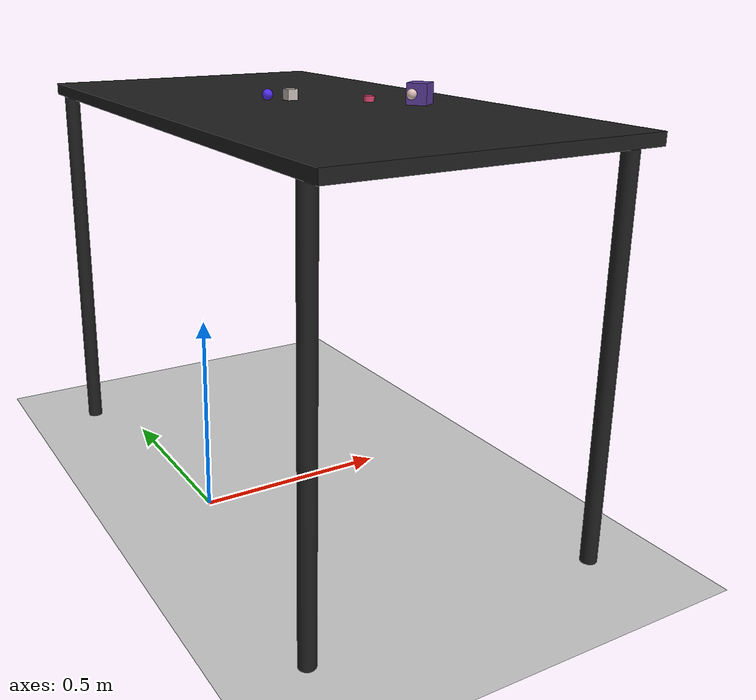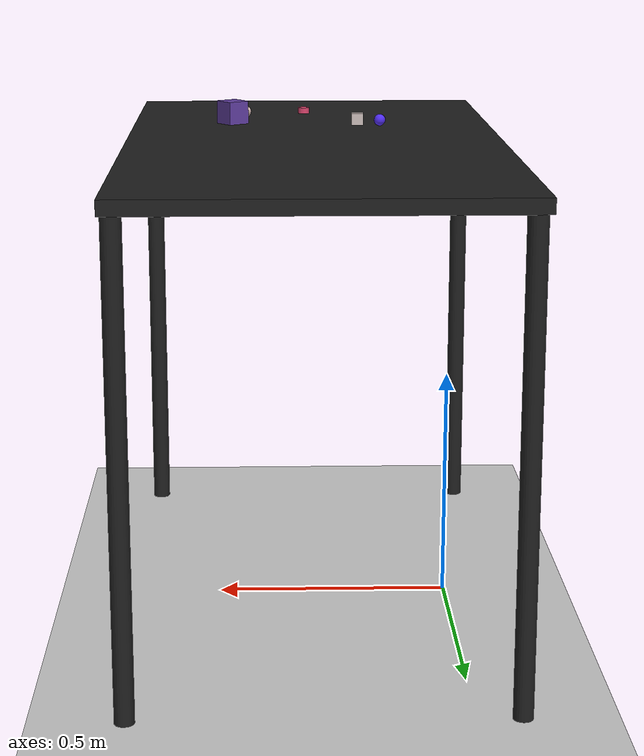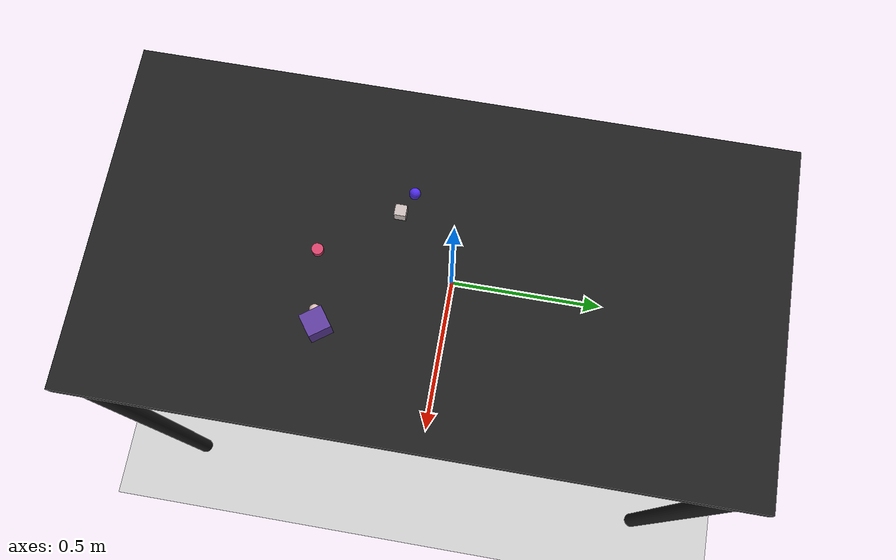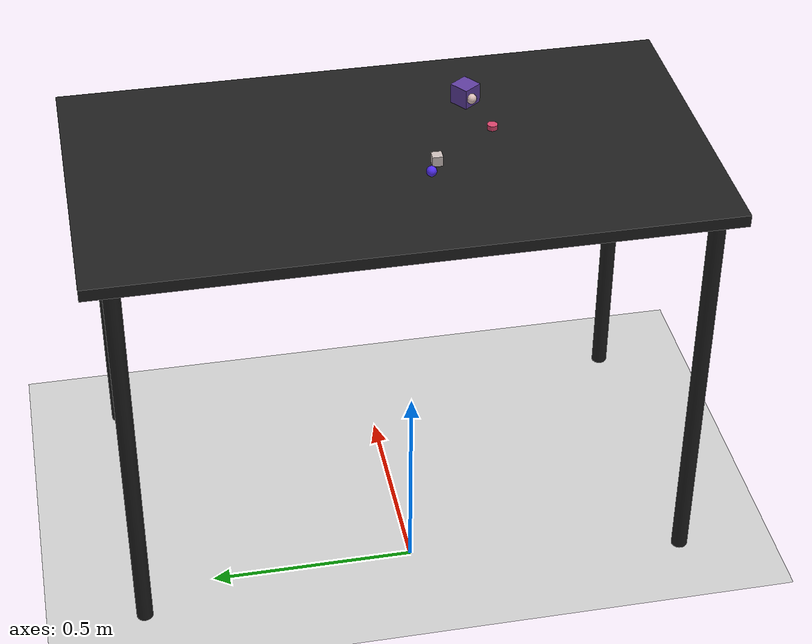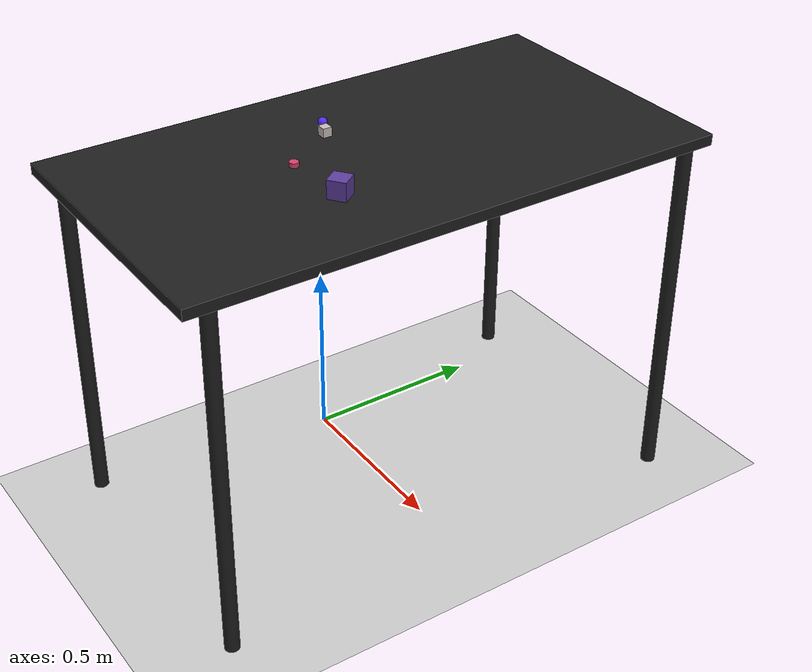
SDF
<?xml version="1.0" ?>
<sdf version="1.6">
  <world name="arm_world">
    <plugin filename="gz-sim-physics-system" name="gz::sim::systems::Physics">
      <engine>
        <filename>libgz-physics-bullet-featherstone-plugin.so</filename>
      </engine>
    </plugin>
    <plugin filename="gz-sim-user-commands-system" name="gz::sim::systems::UserCommands"/>
    <plugin filename="gz-sim-scene-broadcaster-system" name="gz::sim::systems::SceneBroadcaster"/>
    <plugin filename="gz-sim-sensors-system" name="gz::sim::systems::Sensors">
      <render_engine>ogre2</render_engine>
    </plugin>
    <gravity>0.0 0.0 -9.8</gravity>
    <scene>
      <shadows>false</shadows>
    </scene>
    <gui>
      <camera name="user_camera">
        <pose>0.75 -0.75 1.4 0 0.29 2.21</pose>
      </camera>
    </gui>
    <include>
      <uri>https://fuel.gazebosim.org/1.0/OpenRobotics/models/Sun</uri>
    </include>
    <model name="table">
      <static>true</static>
      <include>
        <uri>model://table</uri>
      </include>
      <pose>0.29 0 0 0 0 1.5708</pose>
    </model>
    <model name="ground_plane">
      <static>true</static>
      <link name="link">
        <collision name="collision">
          <geometry>
            <plane>
              <normal>0 0 1</normal>
            </plane>
          </geometry>
          <surface>
            <friction>
              <ode>
                <mu>1.0</mu>
                <mu2>1.0</mu2>
              </ode>
            </friction>
          </surface>
        </collision>
        <visual name="visual">
          <geometry>
            <plane>
              <normal>0 0 1</normal>
              <size>100 100</size>
            </plane>
          </geometry>
          <material>
            <ambient>0.8 0.8 0.8 1</ambient>
            <diffuse>0.8 0.8 0.8 1</diffuse>
            <specular>0.8 0.8 0.8 1</specular>
          </material>
        </visual>
      </link>
    </model>
    <model name="sphere_s_0">
      <pose>0.148 -0.072 1.05 0 0 0.04</pose>
      <link name="sphere_s_0_link">
        <collision name="sphere_s_0_collision">
          <geometry>
            <sphere>
              <radius>0.0125</radius>
            </sphere>
          </geometry>
        </collision>
        <visual name="sphere_s_0_visual">
          <geometry>
            <sphere>
              <radius>0.0125</radius>
            </sphere>
          </geometry>
          <material>
            <ambient>0.31 0.17 0.93 1</ambient>
            <diffuse>0.31 0.17 0.93 1</diffuse>
          </material>
        </visual>
        <velocity_decay>
          <linear>1</linear>
          <angular>1</angular>
        </velocity_decay>
      </link>
    </model>
    <model name="cube_s_1">
      <pose>0.195 -0.094 1.05 0 0 1.56</pose>
      <link name="cube_s_1_link">
        <collision name="cube_s_1_collision">
          <geometry>
            <box>
              <size>0.025 0.025 0.025</size>
            </box>
          </geometry>
        </collision>
        <visual name="cube_s_1_visual">
          <geometry>
            <box>
              <size>0.025 0.025 0.025</size>
            </box>
          </geometry>
          <material>
            <ambient>0.79 0.74 0.73 1</ambient>
            <diffuse>0.79 0.74 0.73 1</diffuse>
          </material>
        </visual>
        <velocity_decay>
          <linear>1</linear>
          <angular>1</angular>
        </velocity_decay>
      </link>
    </model>
    <model name="cylinder_s_2">
      <pose>0.308 -0.251 1.05 0 0 1.98</pose>
      <link name="cylinder_s_2_link">
        <collision name="cylinder_s_2_collision">
          <geometry>
            <cylinder>
              <radius>0.0125</radius>
              <length>0.0125</length>
            </cylinder>
          </geometry>
        </collision>
        <visual name="cylinder_s_2_visual">
          <geometry>
            <cylinder>
              <radius>0.0125</radius>
              <length>0.0125</length>
            </cylinder>
          </geometry>
          <material>
            <ambient>0.84 0.26 0.42 1</ambient>
            <diffuse>0.84 0.26 0.42 1</diffuse>
          </material>
        </visual>
        <velocity_decay>
          <linear>1</linear>
          <angular>1</angular>
        </velocity_decay>
      </link>
    </model>
    <model name="sphere_s_3">
      <pose>0.438 -0.23 1.05 0 0 4.16</pose>
      <link name="sphere_s_3_link">
        <collision name="sphere_s_3_collision">
          <geometry>
            <sphere>
              <radius>0.0125</radius>
            </sphere>
          </geometry>
        </collision>
        <visual name="sphere_s_3_visual">
          <geometry>
            <sphere>
              <radius>0.0125</radius>
            </sphere>
          </geometry>
          <material>
            <ambient>0.85 0.74 0.72 1</ambient>
            <diffuse>0.85 0.74 0.72 1</diffuse>
          </material>
        </visual>
        <velocity_decay>
          <linear>1</linear>
          <angular>1</angular>
        </velocity_decay>
      </link>
    </model>
    <model name="cube_m_4">
      <pose>0.467 -0.221 1.05 0 0 0.63</pose>
      <link name="cube_m_4_link">
        <collision name="cube_m_4_collision">
          <geometry>
            <box>
              <size>0.05 0.05 0.05</size>
            </box>
          </geometry>
        </collision>
        <visual name="cube_m_4_visual">
          <geometry>
            <box>
              <size>0.05 0.05 0.05</size>
            </box>
          </geometry>
          <material>
            <ambient>0.37 0.24 0.62 1</ambient>
            <diffuse>0.37 0.24 0.62 1</diffuse>
          </material>
        </visual>
        <velocity_decay>
          <linear>1</linear>
          <angular>1</angular>
        </velocity_decay>
      </link>
    </model>
  </world>
</sdf>

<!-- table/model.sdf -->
<sdf version="1.5">
  <model name="table">
    <static>true</static>
    <link name="link">
      <collision name="surface">
        <pose>0 0 1.0 0 0 0</pose>
        <geometry>
          <box>
            <size>1.5 0.8 0.03</size>
          </box>
        </geometry>
        <surface>
          <friction>
            <ode>
              <mu>0.6</mu>
              <mu2>0.6</mu2>
            </ode>
          </friction>
        </surface>
      </collision>
      <visual name="surface">
        <pose>0 0 1.0 0 0 0</pose>
        <geometry>
          <box>
            <size>1.5 0.8 0.03</size>
          </box>
        </geometry>
        <material>
          <script>
            <uri>file://media/materials/scripts/gazebo.material</uri>
            <name>Gazebo/Black</name>
          </script>
        </material>
      </visual>
      <collision name="front_left_leg">
        <pose>0.68 0.38 0.5 0 0 0</pose>
        <geometry>
          <cylinder>
            <radius>0.02</radius>
            <length>1.0</length>
          </cylinder>
        </geometry>
      </collision>
      <visual name="front_left_leg">
        <pose>0.68 0.38 0.5 0 0 0</pose>
        <geometry>
          <cylinder>
            <radius>0.02</radius>
            <length>1.0</length>
          </cylinder>
        </geometry>
        <material>
          <script>
            <uri>file://media/materials/scripts/gazebo.material</uri>
            <name>Gazebo/Black</name>
          </script>
        </material>
      </visual>
      <collision name="front_right_leg">
        <pose>0.68 -0.38 0.5 0 0 0</pose>
        <geometry>
          <cylinder>
            <radius>0.02</radius>
            <length>1.0</length>
          </cylinder>
        </geometry>
      </collision>
      <visual name="front_right_leg">
        <pose>0.68 -0.38 0.5 0 0 0</pose>
        <geometry>
          <cylinder>
            <radius>0.02</radius>
            <length>1.0</length>
          </cylinder>
        </geometry>
        <material>
          <script>
            <uri>file://media/materials/scripts/gazebo.material</uri>
            <name>Gazebo/Black</name>
          </script>
        </material>
      </visual>
      <collision name="back_right_leg">
        <pose>-0.68 -0.38 0.5 0 0 0</pose>
        <geometry>
          <cylinder>
            <radius>0.02</radius>
            <length>1.0</length>
          </cylinder>
        </geometry>
      </collision>
      <visual name="back_right_leg">
        <pose>-0.68 -0.38 0.5 0 0 0</pose>
        <geometry>
          <cylinder>
            <radius>0.02</radius>
            <length>1.0</length>
          </cylinder>
        </geometry>
        <material>
          <script>
            <uri>file://media/materials/scripts/gazebo.material</uri>
            <name>Gazebo/Black</name>
          </script>
        </material>
      </visual>
      <collision name="back_left_leg">
        <pose>-0.68 0.38 0.5 0 0 0</pose>
        <geometry>
          <cylinder>
            <radius>0.02</radius>
            <length>1.0</length>
          </cylinder>
        </geometry>
      </collision>
      <visual name="back_left_leg">
        <pose>-0.68 0.38 0.5 0 0 0</pose>
        <geometry>
          <cylinder>
            <radius>0.02</radius>
            <length>1.0</length>
          </cylinder>
        </geometry>
        <material>
          <script>
            <uri>file://media/materials/scripts/gazebo.material</uri>
            <name>Gazebo/Black</name>
          </script>
        </material>
      </visual>
    </link>
  </model>
</sdf>
